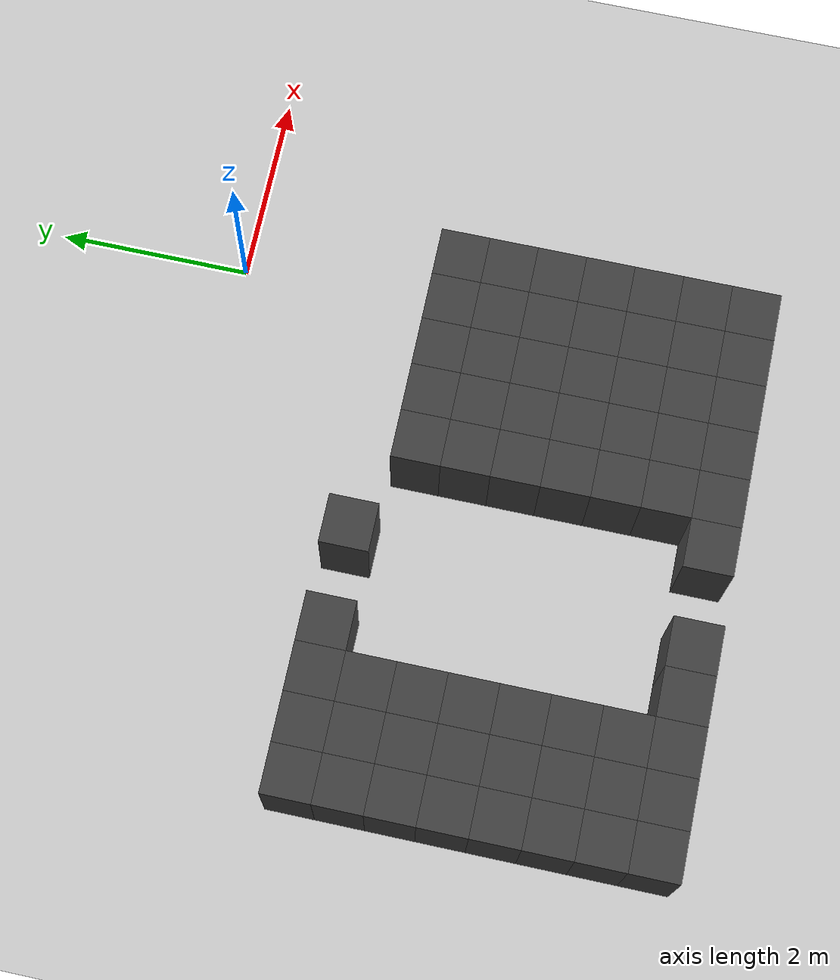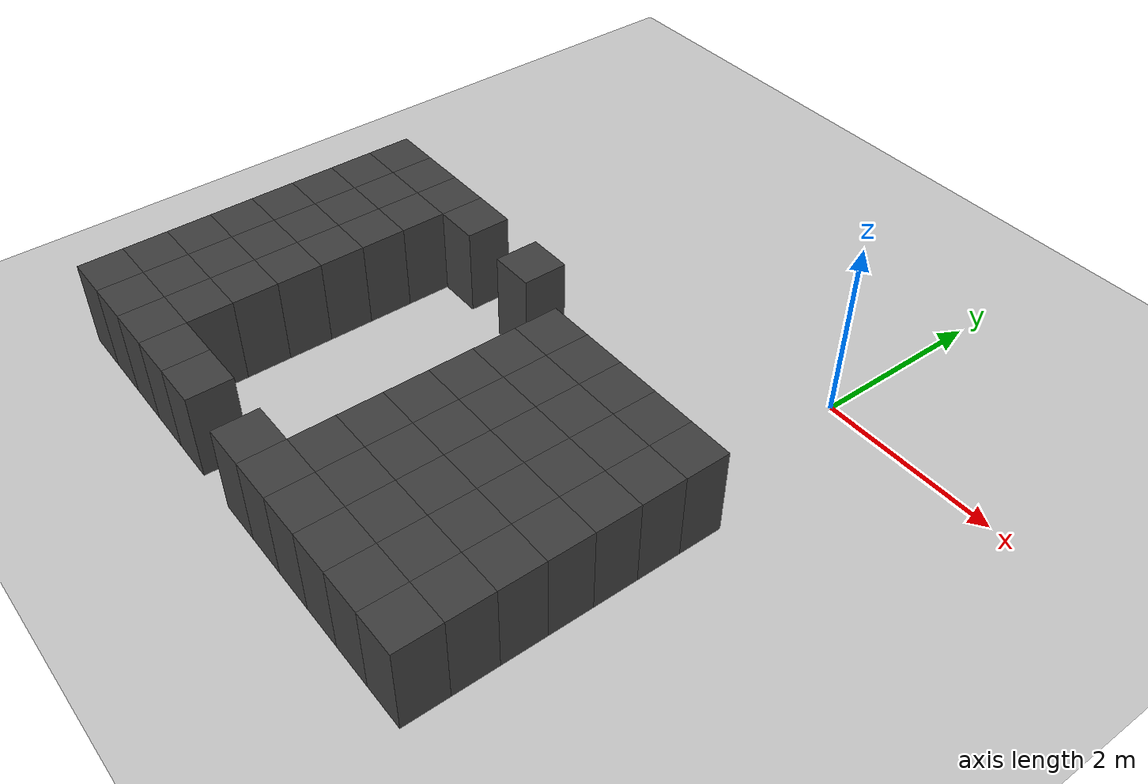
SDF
<sdf version="1.7">
 <world name="map_14980">
  <model name="ground_plane">
   <static>true</static>
   <link name="link">
    <collision name="collision">
     <geometry><plane><normal>0 0 1</normal><size>200 200</size></plane></geometry>
    </collision>
    <visual name="visual">
     <geometry><plane><normal>0 0 1</normal><size>200 200</size></plane></geometry>
     <material><ambient>0.8 0.8 0.8 1</ambient><diffuse>0.8 0.8 0.8 1</diffuse></material>
    </visual>
   </link>
  </model>
  <model name="maze_environment">
   <static>true</static>
   <link name="wall_1004">
    <pose>-5.250 -1.750 0.500 0 0 0</pose>
    <collision name="col"><geometry><box><size>0.5 0.5 1.0</size></box></geometry></collision>
    <visual name="vis">
     <geometry><box><size>0.5 0.5 1.0</size></box></geometry>
     <material><ambient>0.15 0.15 0.15 1</ambient><diffuse>0.25 0.25 0.25 1</diffuse></material>
    </visual>
   </link>
   <link name="wall_1005">
    <pose>-4.750 -1.750 0.500 0 0 0</pose>
    <collision name="col"><geometry><box><size>0.5 0.5 1.0</size></box></geometry></collision>
    <visual name="vis">
     <geometry><box><size>0.5 0.5 1.0</size></box></geometry>
     <material><ambient>0.15 0.15 0.15 1</ambient><diffuse>0.25 0.25 0.25 1</diffuse></material>
    </visual>
   </link>
   <link name="wall_1006">
    <pose>-4.250 -1.750 0.500 0 0 0</pose>
    <collision name="col"><geometry><box><size>0.5 0.5 1.0</size></box></geometry></collision>
    <visual name="vis">
     <geometry><box><size>0.5 0.5 1.0</size></box></geometry>
     <material><ambient>0.15 0.15 0.15 1</ambient><diffuse>0.25 0.25 0.25 1</diffuse></material>
    </visual>
   </link>
   <link name="wall_1007">
    <pose>-3.750 -1.750 0.500 0 0 0</pose>
    <collision name="col"><geometry><box><size>0.5 0.5 1.0</size></box></geometry></collision>
    <visual name="vis">
     <geometry><box><size>0.5 0.5 1.0</size></box></geometry>
     <material><ambient>0.15 0.15 0.15 1</ambient><diffuse>0.25 0.25 0.25 1</diffuse></material>
    </visual>
   </link>
   <link name="wall_1008">
    <pose>-2.750 -1.750 0.500 0 0 0</pose>
    <collision name="col"><geometry><box><size>0.5 0.5 1.0</size></box></geometry></collision>
    <visual name="vis">
     <geometry><box><size>0.5 0.5 1.0</size></box></geometry>
     <material><ambient>0.15 0.15 0.15 1</ambient><diffuse>0.25 0.25 0.25 1</diffuse></material>
    </visual>
   </link>
   <link name="wall_1043">
    <pose>-5.250 -2.250 0.500 0 0 0</pose>
    <collision name="col"><geometry><box><size>0.5 0.5 1.0</size></box></geometry></collision>
    <visual name="vis">
     <geometry><box><size>0.5 0.5 1.0</size></box></geometry>
     <material><ambient>0.15 0.15 0.15 1</ambient><diffuse>0.25 0.25 0.25 1</diffuse></material>
    </visual>
   </link>
   <link name="wall_1044">
    <pose>-4.750 -2.250 0.500 0 0 0</pose>
    <collision name="col"><geometry><box><size>0.5 0.5 1.0</size></box></geometry></collision>
    <visual name="vis">
     <geometry><box><size>0.5 0.5 1.0</size></box></geometry>
     <material><ambient>0.15 0.15 0.15 1</ambient><diffuse>0.25 0.25 0.25 1</diffuse></material>
    </visual>
   </link>
   <link name="wall_1045">
    <pose>-4.250 -2.250 0.500 0 0 0</pose>
    <collision name="col"><geometry><box><size>0.5 0.5 1.0</size></box></geometry></collision>
    <visual name="vis">
     <geometry><box><size>0.5 0.5 1.0</size></box></geometry>
     <material><ambient>0.15 0.15 0.15 1</ambient><diffuse>0.25 0.25 0.25 1</diffuse></material>
    </visual>
   </link>
   <link name="wall_1046">
    <pose>-1.750 -2.250 0.500 0 0 0</pose>
    <collision name="col"><geometry><box><size>0.5 0.5 1.0</size></box></geometry></collision>
    <visual name="vis">
     <geometry><box><size>0.5 0.5 1.0</size></box></geometry>
     <material><ambient>0.15 0.15 0.15 1</ambient><diffuse>0.25 0.25 0.25 1</diffuse></material>
    </visual>
   </link>
   <link name="wall_1047">
    <pose>-1.250 -2.250 0.500 0 0 0</pose>
    <collision name="col"><geometry><box><size>0.5 0.5 1.0</size></box></geometry></collision>
    <visual name="vis">
     <geometry><box><size>0.5 0.5 1.0</size></box></geometry>
     <material><ambient>0.15 0.15 0.15 1</ambient><diffuse>0.25 0.25 0.25 1</diffuse></material>
    </visual>
   </link>
   <link name="wall_1048">
    <pose>-0.750 -2.250 0.500 0 0 0</pose>
    <collision name="col"><geometry><box><size>0.5 0.5 1.0</size></box></geometry></collision>
    <visual name="vis">
     <geometry><box><size>0.5 0.5 1.0</size></box></geometry>
     <material><ambient>0.15 0.15 0.15 1</ambient><diffuse>0.25 0.25 0.25 1</diffuse></material>
    </visual>
   </link>
   <link name="wall_1049">
    <pose>-0.250 -2.250 0.500 0 0 0</pose>
    <collision name="col"><geometry><box><size>0.5 0.5 1.0</size></box></geometry></collision>
    <visual name="vis">
     <geometry><box><size>0.5 0.5 1.0</size></box></geometry>
     <material><ambient>0.15 0.15 0.15 1</ambient><diffuse>0.25 0.25 0.25 1</diffuse></material>
    </visual>
   </link>
   <link name="wall_1050">
    <pose>0.250 -2.250 0.500 0 0 0</pose>
    <collision name="col"><geometry><box><size>0.5 0.5 1.0</size></box></geometry></collision>
    <visual name="vis">
     <geometry><box><size>0.5 0.5 1.0</size></box></geometry>
     <material><ambient>0.15 0.15 0.15 1</ambient><diffuse>0.25 0.25 0.25 1</diffuse></material>
    </visual>
   </link>
   <link name="wall_1079">
    <pose>-5.250 -2.750 0.500 0 0 0</pose>
    <collision name="col"><geometry><box><size>0.5 0.5 1.0</size></box></geometry></collision>
    <visual name="vis">
     <geometry><box><size>0.5 0.5 1.0</size></box></geometry>
     <material><ambient>0.15 0.15 0.15 1</ambient><diffuse>0.25 0.25 0.25 1</diffuse></material>
    </visual>
   </link>
   <link name="wall_1080">
    <pose>-4.750 -2.750 0.500 0 0 0</pose>
    <collision name="col"><geometry><box><size>0.5 0.5 1.0</size></box></geometry></collision>
    <visual name="vis">
     <geometry><box><size>0.5 0.5 1.0</size></box></geometry>
     <material><ambient>0.15 0.15 0.15 1</ambient><diffuse>0.25 0.25 0.25 1</diffuse></material>
    </visual>
   </link>
   <link name="wall_1081">
    <pose>-4.250 -2.750 0.500 0 0 0</pose>
    <collision name="col"><geometry><box><size>0.5 0.5 1.0</size></box></geometry></collision>
    <visual name="vis">
     <geometry><box><size>0.5 0.5 1.0</size></box></geometry>
     <material><ambient>0.15 0.15 0.15 1</ambient><diffuse>0.25 0.25 0.25 1</diffuse></material>
    </visual>
   </link>
   <link name="wall_1082">
    <pose>-1.750 -2.750 0.500 0 0 0</pose>
    <collision name="col"><geometry><box><size>0.5 0.5 1.0</size></box></geometry></collision>
    <visual name="vis">
     <geometry><box><size>0.5 0.5 1.0</size></box></geometry>
     <material><ambient>0.15 0.15 0.15 1</ambient><diffuse>0.25 0.25 0.25 1</diffuse></material>
    </visual>
   </link>
   <link name="wall_1083">
    <pose>-1.250 -2.750 0.500 0 0 0</pose>
    <collision name="col"><geometry><box><size>0.5 0.5 1.0</size></box></geometry></collision>
    <visual name="vis">
     <geometry><box><size>0.5 0.5 1.0</size></box></geometry>
     <material><ambient>0.15 0.15 0.15 1</ambient><diffuse>0.25 0.25 0.25 1</diffuse></material>
    </visual>
   </link>
   <link name="wall_1084">
    <pose>-0.750 -2.750 0.500 0 0 0</pose>
    <collision name="col"><geometry><box><size>0.5 0.5 1.0</size></box></geometry></collision>
    <visual name="vis">
     <geometry><box><size>0.5 0.5 1.0</size></box></geometry>
     <material><ambient>0.15 0.15 0.15 1</ambient><diffuse>0.25 0.25 0.25 1</diffuse></material>
    </visual>
   </link>
   <link name="wall_1085">
    <pose>-0.250 -2.750 0.500 0 0 0</pose>
    <collision name="col"><geometry><box><size>0.5 0.5 1.0</size></box></geometry></collision>
    <visual name="vis">
     <geometry><box><size>0.5 0.5 1.0</size></box></geometry>
     <material><ambient>0.15 0.15 0.15 1</ambient><diffuse>0.25 0.25 0.25 1</diffuse></material>
    </visual>
   </link>
   <link name="wall_1086">
    <pose>0.250 -2.750 0.500 0 0 0</pose>
    <collision name="col"><geometry><box><size>0.5 0.5 1.0</size></box></geometry></collision>
    <visual name="vis">
     <geometry><box><size>0.5 0.5 1.0</size></box></geometry>
     <material><ambient>0.15 0.15 0.15 1</ambient><diffuse>0.25 0.25 0.25 1</diffuse></material>
    </visual>
   </link>
   <link name="wall_1115">
    <pose>-5.250 -3.250 0.500 0 0 0</pose>
    <collision name="col"><geometry><box><size>0.5 0.5 1.0</size></box></geometry></collision>
    <visual name="vis">
     <geometry><box><size>0.5 0.5 1.0</size></box></geometry>
     <material><ambient>0.15 0.15 0.15 1</ambient><diffuse>0.25 0.25 0.25 1</diffuse></material>
    </visual>
   </link>
   <link name="wall_1116">
    <pose>-4.750 -3.250 0.500 0 0 0</pose>
    <collision name="col"><geometry><box><size>0.5 0.5 1.0</size></box></geometry></collision>
    <visual name="vis">
     <geometry><box><size>0.5 0.5 1.0</size></box></geometry>
     <material><ambient>0.15 0.15 0.15 1</ambient><diffuse>0.25 0.25 0.25 1</diffuse></material>
    </visual>
   </link>
   <link name="wall_1117">
    <pose>-4.250 -3.250 0.500 0 0 0</pose>
    <collision name="col"><geometry><box><size>0.5 0.5 1.0</size></box></geometry></collision>
    <visual name="vis">
     <geometry><box><size>0.5 0.5 1.0</size></box></geometry>
     <material><ambient>0.15 0.15 0.15 1</ambient><diffuse>0.25 0.25 0.25 1</diffuse></material>
    </visual>
   </link>
   <link name="wall_1118">
    <pose>-1.750 -3.250 0.500 0 0 0</pose>
    <collision name="col"><geometry><box><size>0.5 0.5 1.0</size></box></geometry></collision>
    <visual name="vis">
     <geometry><box><size>0.5 0.5 1.0</size></box></geometry>
     <material><ambient>0.15 0.15 0.15 1</ambient><diffuse>0.25 0.25 0.25 1</diffuse></material>
    </visual>
   </link>
   <link name="wall_1119">
    <pose>-1.250 -3.250 0.500 0 0 0</pose>
    <collision name="col"><geometry><box><size>0.5 0.5 1.0</size></box></geometry></collision>
    <visual name="vis">
     <geometry><box><size>0.5 0.5 1.0</size></box></geometry>
     <material><ambient>0.15 0.15 0.15 1</ambient><diffuse>0.25 0.25 0.25 1</diffuse></material>
    </visual>
   </link>
   <link name="wall_1120">
    <pose>-0.750 -3.250 0.500 0 0 0</pose>
    <collision name="col"><geometry><box><size>0.5 0.5 1.0</size></box></geometry></collision>
    <visual name="vis">
     <geometry><box><size>0.5 0.5 1.0</size></box></geometry>
     <material><ambient>0.15 0.15 0.15 1</ambient><diffuse>0.25 0.25 0.25 1</diffuse></material>
    </visual>
   </link>
   <link name="wall_1121">
    <pose>-0.250 -3.250 0.500 0 0 0</pose>
    <collision name="col"><geometry><box><size>0.5 0.5 1.0</size></box></geometry></collision>
    <visual name="vis">
     <geometry><box><size>0.5 0.5 1.0</size></box></geometry>
     <material><ambient>0.15 0.15 0.15 1</ambient><diffuse>0.25 0.25 0.25 1</diffuse></material>
    </visual>
   </link>
   <link name="wall_1122">
    <pose>0.250 -3.250 0.500 0 0 0</pose>
    <collision name="col"><geometry><box><size>0.5 0.5 1.0</size></box></geometry></collision>
    <visual name="vis">
     <geometry><box><size>0.5 0.5 1.0</size></box></geometry>
     <material><ambient>0.15 0.15 0.15 1</ambient><diffuse>0.25 0.25 0.25 1</diffuse></material>
    </visual>
   </link>
   <link name="wall_1153">
    <pose>-5.250 -3.750 0.500 0 0 0</pose>
    <collision name="col"><geometry><box><size>0.5 0.5 1.0</size></box></geometry></collision>
    <visual name="vis">
     <geometry><box><size>0.5 0.5 1.0</size></box></geometry>
     <material><ambient>0.15 0.15 0.15 1</ambient><diffuse>0.25 0.25 0.25 1</diffuse></material>
    </visual>
   </link>
   <link name="wall_1154">
    <pose>-4.750 -3.750 0.500 0 0 0</pose>
    <collision name="col"><geometry><box><size>0.5 0.5 1.0</size></box></geometry></collision>
    <visual name="vis">
     <geometry><box><size>0.5 0.5 1.0</size></box></geometry>
     <material><ambient>0.15 0.15 0.15 1</ambient><diffuse>0.25 0.25 0.25 1</diffuse></material>
    </visual>
   </link>
   <link name="wall_1155">
    <pose>-4.250 -3.750 0.500 0 0 0</pose>
    <collision name="col"><geometry><box><size>0.5 0.5 1.0</size></box></geometry></collision>
    <visual name="vis">
     <geometry><box><size>0.5 0.5 1.0</size></box></geometry>
     <material><ambient>0.15 0.15 0.15 1</ambient><diffuse>0.25 0.25 0.25 1</diffuse></material>
    </visual>
   </link>
   <link name="wall_1156">
    <pose>-1.750 -3.750 0.500 0 0 0</pose>
    <collision name="col"><geometry><box><size>0.5 0.5 1.0</size></box></geometry></collision>
    <visual name="vis">
     <geometry><box><size>0.5 0.5 1.0</size></box></geometry>
     <material><ambient>0.15 0.15 0.15 1</ambient><diffuse>0.25 0.25 0.25 1</diffuse></material>
    </visual>
   </link>
   <link name="wall_1157">
    <pose>-1.250 -3.750 0.500 0 0 0</pose>
    <collision name="col"><geometry><box><size>0.5 0.5 1.0</size></box></geometry></collision>
    <visual name="vis">
     <geometry><box><size>0.5 0.5 1.0</size></box></geometry>
     <material><ambient>0.15 0.15 0.15 1</ambient><diffuse>0.25 0.25 0.25 1</diffuse></material>
    </visual>
   </link>
   <link name="wall_1158">
    <pose>-0.750 -3.750 0.500 0 0 0</pose>
    <collision name="col"><geometry><box><size>0.5 0.5 1.0</size></box></geometry></collision>
    <visual name="vis">
     <geometry><box><size>0.5 0.5 1.0</size></box></geometry>
     <material><ambient>0.15 0.15 0.15 1</ambient><diffuse>0.25 0.25 0.25 1</diffuse></material>
    </visual>
   </link>
   <link name="wall_1159">
    <pose>-0.250 -3.750 0.500 0 0 0</pose>
    <collision name="col"><geometry><box><size>0.5 0.5 1.0</size></box></geometry></collision>
    <visual name="vis">
     <geometry><box><size>0.5 0.5 1.0</size></box></geometry>
     <material><ambient>0.15 0.15 0.15 1</ambient><diffuse>0.25 0.25 0.25 1</diffuse></material>
    </visual>
   </link>
   <link name="wall_1160">
    <pose>0.250 -3.750 0.500 0 0 0</pose>
    <collision name="col"><geometry><box><size>0.5 0.5 1.0</size></box></geometry></collision>
    <visual name="vis">
     <geometry><box><size>0.5 0.5 1.0</size></box></geometry>
     <material><ambient>0.15 0.15 0.15 1</ambient><diffuse>0.25 0.25 0.25 1</diffuse></material>
    </visual>
   </link>
   <link name="wall_1198">
    <pose>-5.250 -4.250 0.500 0 0 0</pose>
    <collision name="col"><geometry><box><size>0.5 0.5 1.0</size></box></geometry></collision>
    <visual name="vis">
     <geometry><box><size>0.5 0.5 1.0</size></box></geometry>
     <material><ambient>0.15 0.15 0.15 1</ambient><diffuse>0.25 0.25 0.25 1</diffuse></material>
    </visual>
   </link>
   <link name="wall_1199">
    <pose>-4.750 -4.250 0.500 0 0 0</pose>
    <collision name="col"><geometry><box><size>0.5 0.5 1.0</size></box></geometry></collision>
    <visual name="vis">
     <geometry><box><size>0.5 0.5 1.0</size></box></geometry>
     <material><ambient>0.15 0.15 0.15 1</ambient><diffuse>0.25 0.25 0.25 1</diffuse></material>
    </visual>
   </link>
   <link name="wall_1200">
    <pose>-4.250 -4.250 0.500 0 0 0</pose>
    <collision name="col"><geometry><box><size>0.5 0.5 1.0</size></box></geometry></collision>
    <visual name="vis">
     <geometry><box><size>0.5 0.5 1.0</size></box></geometry>
     <material><ambient>0.15 0.15 0.15 1</ambient><diffuse>0.25 0.25 0.25 1</diffuse></material>
    </visual>
   </link>
   <link name="wall_1201">
    <pose>-1.750 -4.250 0.500 0 0 0</pose>
    <collision name="col"><geometry><box><size>0.5 0.5 1.0</size></box></geometry></collision>
    <visual name="vis">
     <geometry><box><size>0.5 0.5 1.0</size></box></geometry>
     <material><ambient>0.15 0.15 0.15 1</ambient><diffuse>0.25 0.25 0.25 1</diffuse></material>
    </visual>
   </link>
   <link name="wall_1202">
    <pose>-1.250 -4.250 0.500 0 0 0</pose>
    <collision name="col"><geometry><box><size>0.5 0.5 1.0</size></box></geometry></collision>
    <visual name="vis">
     <geometry><box><size>0.5 0.5 1.0</size></box></geometry>
     <material><ambient>0.15 0.15 0.15 1</ambient><diffuse>0.25 0.25 0.25 1</diffuse></material>
    </visual>
   </link>
   <link name="wall_1203">
    <pose>-0.750 -4.250 0.500 0 0 0</pose>
    <collision name="col"><geometry><box><size>0.5 0.5 1.0</size></box></geometry></collision>
    <visual name="vis">
     <geometry><box><size>0.5 0.5 1.0</size></box></geometry>
     <material><ambient>0.15 0.15 0.15 1</ambient><diffuse>0.25 0.25 0.25 1</diffuse></material>
    </visual>
   </link>
   <link name="wall_1204">
    <pose>-0.250 -4.250 0.500 0 0 0</pose>
    <collision name="col"><geometry><box><size>0.5 0.5 1.0</size></box></geometry></collision>
    <visual name="vis">
     <geometry><box><size>0.5 0.5 1.0</size></box></geometry>
     <material><ambient>0.15 0.15 0.15 1</ambient><diffuse>0.25 0.25 0.25 1</diffuse></material>
    </visual>
   </link>
   <link name="wall_1205">
    <pose>0.250 -4.250 0.500 0 0 0</pose>
    <collision name="col"><geometry><box><size>0.5 0.5 1.0</size></box></geometry></collision>
    <visual name="vis">
     <geometry><box><size>0.5 0.5 1.0</size></box></geometry>
     <material><ambient>0.15 0.15 0.15 1</ambient><diffuse>0.25 0.25 0.25 1</diffuse></material>
    </visual>
   </link>
   <link name="wall_1243">
    <pose>-5.250 -4.750 0.500 0 0 0</pose>
    <collision name="col"><geometry><box><size>0.5 0.5 1.0</size></box></geometry></collision>
    <visual name="vis">
     <geometry><box><size>0.5 0.5 1.0</size></box></geometry>
     <material><ambient>0.15 0.15 0.15 1</ambient><diffuse>0.25 0.25 0.25 1</diffuse></material>
    </visual>
   </link>
   <link name="wall_1244">
    <pose>-4.750 -4.750 0.500 0 0 0</pose>
    <collision name="col"><geometry><box><size>0.5 0.5 1.0</size></box></geometry></collision>
    <visual name="vis">
     <geometry><box><size>0.5 0.5 1.0</size></box></geometry>
     <material><ambient>0.15 0.15 0.15 1</ambient><diffuse>0.25 0.25 0.25 1</diffuse></material>
    </visual>
   </link>
   <link name="wall_1245">
    <pose>-4.250 -4.750 0.500 0 0 0</pose>
    <collision name="col"><geometry><box><size>0.5 0.5 1.0</size></box></geometry></collision>
    <visual name="vis">
     <geometry><box><size>0.5 0.5 1.0</size></box></geometry>
     <material><ambient>0.15 0.15 0.15 1</ambient><diffuse>0.25 0.25 0.25 1</diffuse></material>
    </visual>
   </link>
   <link name="wall_1246">
    <pose>-1.750 -4.750 0.500 0 0 0</pose>
    <collision name="col"><geometry><box><size>0.5 0.5 1.0</size></box></geometry></collision>
    <visual name="vis">
     <geometry><box><size>0.5 0.5 1.0</size></box></geometry>
     <material><ambient>0.15 0.15 0.15 1</ambient><diffuse>0.25 0.25 0.25 1</diffuse></material>
    </visual>
   </link>
   <link name="wall_1247">
    <pose>-1.250 -4.750 0.500 0 0 0</pose>
    <collision name="col"><geometry><box><size>0.5 0.5 1.0</size></box></geometry></collision>
    <visual name="vis">
     <geometry><box><size>0.5 0.5 1.0</size></box></geometry>
     <material><ambient>0.15 0.15 0.15 1</ambient><diffuse>0.25 0.25 0.25 1</diffuse></material>
    </visual>
   </link>
   <link name="wall_1248">
    <pose>-0.750 -4.750 0.500 0 0 0</pose>
    <collision name="col"><geometry><box><size>0.5 0.5 1.0</size></box></geometry></collision>
    <visual name="vis">
     <geometry><box><size>0.5 0.5 1.0</size></box></geometry>
     <material><ambient>0.15 0.15 0.15 1</ambient><diffuse>0.25 0.25 0.25 1</diffuse></material>
    </visual>
   </link>
   <link name="wall_1249">
    <pose>-0.250 -4.750 0.500 0 0 0</pose>
    <collision name="col"><geometry><box><size>0.5 0.5 1.0</size></box></geometry></collision>
    <visual name="vis">
     <geometry><box><size>0.5 0.5 1.0</size></box></geometry>
     <material><ambient>0.15 0.15 0.15 1</ambient><diffuse>0.25 0.25 0.25 1</diffuse></material>
    </visual>
   </link>
   <link name="wall_1250">
    <pose>0.250 -4.750 0.500 0 0 0</pose>
    <collision name="col"><geometry><box><size>0.5 0.5 1.0</size></box></geometry></collision>
    <visual name="vis">
     <geometry><box><size>0.5 0.5 1.0</size></box></geometry>
     <material><ambient>0.15 0.15 0.15 1</ambient><diffuse>0.25 0.25 0.25 1</diffuse></material>
    </visual>
   </link>
   <link name="wall_1284">
    <pose>-5.250 -5.250 0.500 0 0 0</pose>
    <collision name="col"><geometry><box><size>0.5 0.5 1.0</size></box></geometry></collision>
    <visual name="vis">
     <geometry><box><size>0.5 0.5 1.0</size></box></geometry>
     <material><ambient>0.15 0.15 0.15 1</ambient><diffuse>0.25 0.25 0.25 1</diffuse></material>
    </visual>
   </link>
   <link name="wall_1285">
    <pose>-4.750 -5.250 0.500 0 0 0</pose>
    <collision name="col"><geometry><box><size>0.5 0.5 1.0</size></box></geometry></collision>
    <visual name="vis">
     <geometry><box><size>0.5 0.5 1.0</size></box></geometry>
     <material><ambient>0.15 0.15 0.15 1</ambient><diffuse>0.25 0.25 0.25 1</diffuse></material>
    </visual>
   </link>
   <link name="wall_1286">
    <pose>-4.250 -5.250 0.500 0 0 0</pose>
    <collision name="col"><geometry><box><size>0.5 0.5 1.0</size></box></geometry></collision>
    <visual name="vis">
     <geometry><box><size>0.5 0.5 1.0</size></box></geometry>
     <material><ambient>0.15 0.15 0.15 1</ambient><diffuse>0.25 0.25 0.25 1</diffuse></material>
    </visual>
   </link>
   <link name="wall_1287">
    <pose>-3.750 -5.250 0.500 0 0 0</pose>
    <collision name="col"><geometry><box><size>0.5 0.5 1.0</size></box></geometry></collision>
    <visual name="vis">
     <geometry><box><size>0.5 0.5 1.0</size></box></geometry>
     <material><ambient>0.15 0.15 0.15 1</ambient><diffuse>0.25 0.25 0.25 1</diffuse></material>
    </visual>
   </link>
   <link name="wall_1288">
    <pose>-3.250 -5.250 0.500 0 0 0</pose>
    <collision name="col"><geometry><box><size>0.5 0.5 1.0</size></box></geometry></collision>
    <visual name="vis">
     <geometry><box><size>0.5 0.5 1.0</size></box></geometry>
     <material><ambient>0.15 0.15 0.15 1</ambient><diffuse>0.25 0.25 0.25 1</diffuse></material>
    </visual>
   </link>
   <link name="wall_1289">
    <pose>-2.250 -5.250 0.500 0 0 0</pose>
    <collision name="col"><geometry><box><size>0.5 0.5 1.0</size></box></geometry></collision>
    <visual name="vis">
     <geometry><box><size>0.5 0.5 1.0</size></box></geometry>
     <material><ambient>0.15 0.15 0.15 1</ambient><diffuse>0.25 0.25 0.25 1</diffuse></material>
    </visual>
   </link>
   <link name="wall_1290">
    <pose>-1.750 -5.250 0.500 0 0 0</pose>
    <collision name="col"><geometry><box><size>0.5 0.5 1.0</size></box></geometry></collision>
    <visual name="vis">
     <geometry><box><size>0.5 0.5 1.0</size></box></geometry>
     <material><ambient>0.15 0.15 0.15 1</ambient><diffuse>0.25 0.25 0.25 1</diffuse></material>
    </visual>
   </link>
   <link name="wall_1291">
    <pose>-1.250 -5.250 0.500 0 0 0</pose>
    <collision name="col"><geometry><box><size>0.5 0.5 1.0</size></box></geometry></collision>
    <visual name="vis">
     <geometry><box><size>0.5 0.5 1.0</size></box></geometry>
     <material><ambient>0.15 0.15 0.15 1</ambient><diffuse>0.25 0.25 0.25 1</diffuse></material>
    </visual>
   </link>
   <link name="wall_1292">
    <pose>-0.750 -5.250 0.500 0 0 0</pose>
    <collision name="col"><geometry><box><size>0.5 0.5 1.0</size></box></geometry></collision>
    <visual name="vis">
     <geometry><box><size>0.5 0.5 1.0</size></box></geometry>
     <material><ambient>0.15 0.15 0.15 1</ambient><diffuse>0.25 0.25 0.25 1</diffuse></material>
    </visual>
   </link>
   <link name="wall_1293">
    <pose>-0.250 -5.250 0.500 0 0 0</pose>
    <collision name="col"><geometry><box><size>0.5 0.5 1.0</size></box></geometry></collision>
    <visual name="vis">
     <geometry><box><size>0.5 0.5 1.0</size></box></geometry>
     <material><ambient>0.15 0.15 0.15 1</ambient><diffuse>0.25 0.25 0.25 1</diffuse></material>
    </visual>
   </link>
   <link name="wall_1294">
    <pose>0.250 -5.250 0.500 0 0 0</pose>
    <collision name="col"><geometry><box><size>0.5 0.5 1.0</size></box></geometry></collision>
    <visual name="vis">
     <geometry><box><size>0.5 0.5 1.0</size></box></geometry>
     <material><ambient>0.15 0.15 0.15 1</ambient><diffuse>0.25 0.25 0.25 1</diffuse></material>
    </visual>
   </link>
  </model>
 </world>
</sdf>
